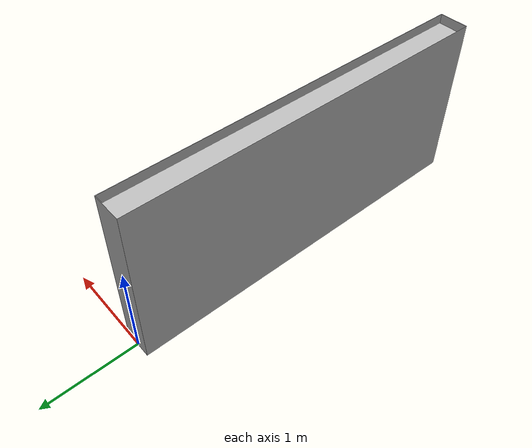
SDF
<?xml version="1.0"?>
<sdf version="1.4">
  <model name='uchannel_1700'>
    <static>1</static>
    <link name='link'>
      <pose>0 0 0 0 0 0</pose>
      <collision name='collision'>
        <geometry>
          <mesh>
            <uri>model://uchannel_1700/mesh/uchannel_1700.dae</uri>
            <scale>1 1 1</scale>
          </mesh>
        </geometry>
      </collision>
      <visual name='visual'>
        <cast_shadows>1</cast_shadows>
        <transparency>0</transparency>
        <geometry>
          <mesh>
            <uri>model://uchannel_1700/mesh/uchannel_1700.dae</uri>
            <scale>1 1 1</scale>
          </mesh>
        </geometry>
      </visual>
    </link>
  </model>
</sdf>
